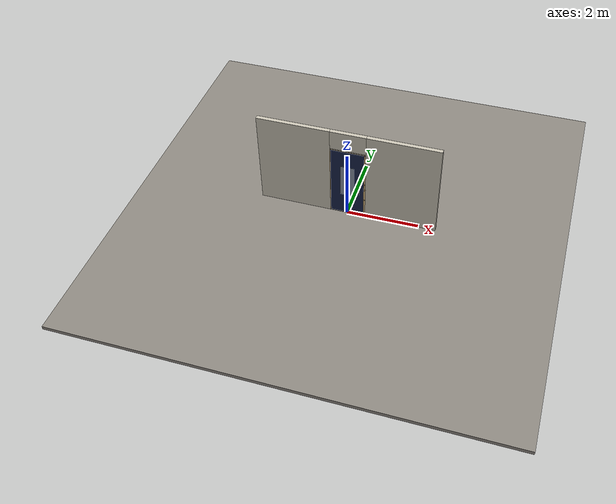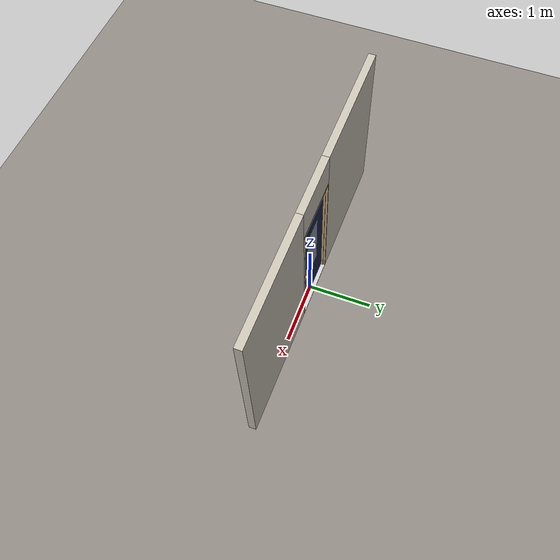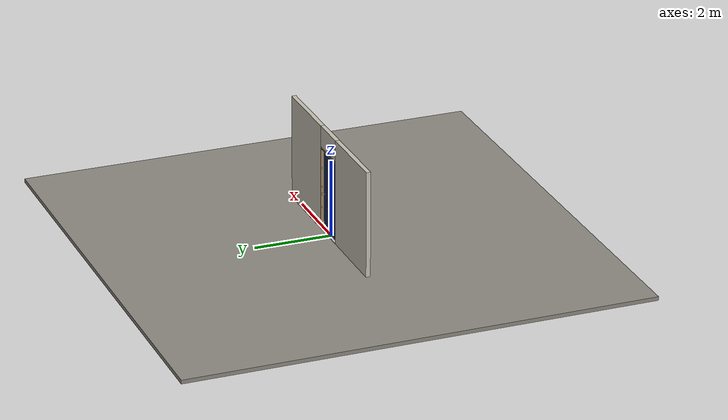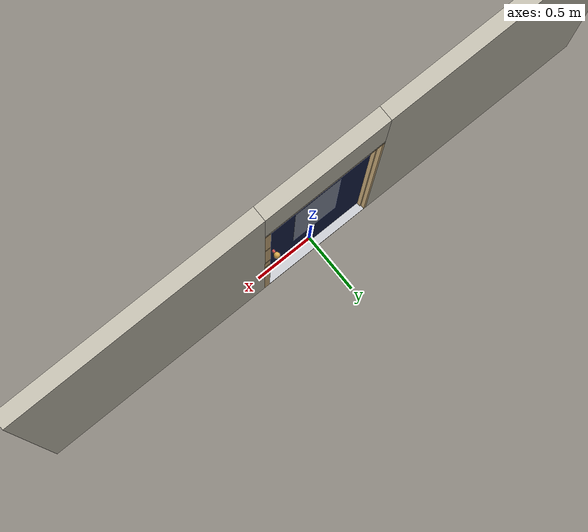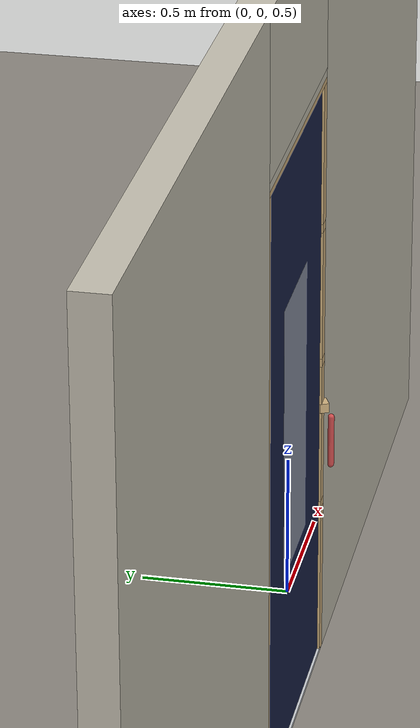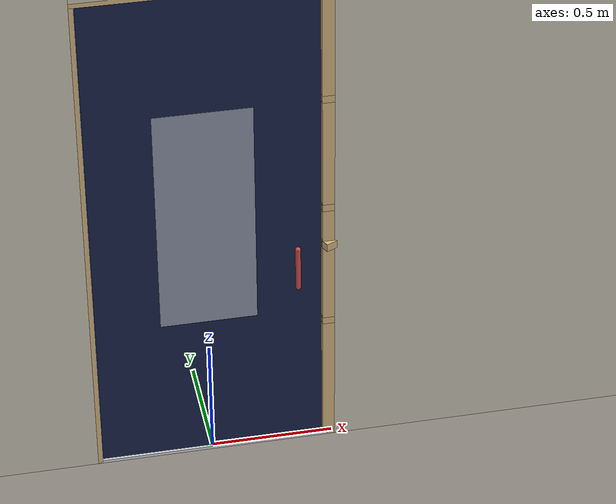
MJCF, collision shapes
<?xml version="1.0" ?>
<mujoco model="db0610_swing_single_minimal">
  <compiler angle="radian" meshdir="../../hardware" texturedir="../../textures" autolimits="true" inertiafromgeom="false"/>
  <option timestep="0.002" integrator="implicitfast" cone="elliptic" impratio="10" noslip_iterations="3">
    <flag multiccd="enable"/>
  </option>
  <size memory="16M"/>
  <default>
    <geom condim="4" solref="0.005 1" solimp="0.95 0.99 0.001"/>
    <joint solreflimit="0.005 1" solimplimit="0.95 0.99 0.001"/>
    <tendon solreflimit="0.005 1"/>
    <equality solref="0.002 1"/>
  </default>
  <visual>
    <headlight ambient="0.4 0.4 0.4" diffuse="0.7 0.7 0.7" specular="0.2 0.2 0.2"/>
    <quality shadowsize="4096"/>
    <map znear="0.01" zfar="60"/>
  </visual>
  <asset>
    <mesh name="handleset_beb5526ad2" file="handleset_beb5526ad2.obj"/>
    <mesh name="knob_d1888f6f03" file="knob_d1888f6f03.obj"/>
    <material name="mat_floor" rgba="0.55 0.53 0.5 1" specular="0.2" shininess="0.15" reflectance="0"/>
    <material name="mat_wall" rgba="0.78 0.76 0.7 1" specular="0.2" shininess="0.1" reflectance="0"/>
    <material name="mat_leaf" rgba="0.09 0.13 0.28 1" specular="0.2" shininess="0.34" reflectance="0"/>
    <material name="mat_glass" rgba="0.9 0.93 0.95 0.6" specular="0.2" shininess="0.5" reflectance="0.1"/>
    <material name="mat_hinge" rgba="0.65 0.66 0.68 1" specular="0.74" shininess="0.5" reflectance="0.36"/>
    <material name="mat_op_bronze" rgba="0.3 0.22 0.15 1" specular="0.74" shininess="0.5" reflectance="0.36"/>
    <material name="mat_op_brass" rgba="0.85 0.66 0.3 1" specular="0.8" shininess="0.75" reflectance="0.4"/>
    <material name="mat_trim" rgba="0.85 0.66 0.3 1" specular="0.8" shininess="0.75" reflectance="0.4"/>
    <material name="mat_bolt" rgba="0.85 0.66 0.3 1" specular="0.8" shininess="0.75" reflectance="0.4"/>
    <material name="mat_deadbolt" rgba="0.85 0.66 0.3 1" specular="0.8" shininess="0.75" reflectance="0.4"/>
    <material name="mat_frame" rgba="0.82 0.7 0.5 1" specular="0.2" shininess="0.45" reflectance="0"/>
    <material name="mat_threshold" rgba="0.8 0.81 0.83 1" specular="0.8" shininess="0.6" reflectance="0.4"/>
    <material name="mat_kick" rgba="0.75 0.76 0.77 1" specular="0.8" shininess="0.65" reflectance="0.4"/>
    <material name="mat_bumper_stop" rgba="0.08 0.08 0.08 1" specular="0.2" shininess="0.1" reflectance="0"/>
    <material name="mat_stop_base" rgba="0.9 0.9 0.92 1" specular="0.8" shininess="0.9" reflectance="0.4"/>
    <texture name="skybox" type="skybox" builtin="gradient" rgb1="0.6 0.7 0.85" rgb2="0.9 0.92 0.95" width="256" height="256"/>
  </asset>
  <worldbody>
    <light name="sun" pos="1.5 -2.5 4" dir="-0.3 0.5 -0.8" directional="true" diffuse="0.8 0.8 0.8" specular="0.3 0.3 0.3" castshadow="true"/>
    <light name="fill" pos="-1.5 2.5 3" dir="0.3 -0.5 -0.7" directional="true" diffuse="0.35 0.35 0.4" castshadow="false"/>
    <camera name="robot_view" pos="0 -2.609312 1.812087" xyaxes="1 0 0 0 0.26963 0.962964" fovy="52"/>
    <camera name="far_view" pos="0 2.666313 1.812087" xyaxes="-1 0 0 0 -0.26963 0.962964" fovy="52"/>
    <camera name="iso" pos="2.004737 -2.187262 2.234138" xyaxes="0.741536 0.670913 0 -0.242917 0.268487 0.932151" fovy="46"/>
    <camera name="detail_handle" pos="0.5315 -0.882 1.185" xyaxes="0.97561 0.219512 0 -0.070934 0.315262 0.94635" fovy="38"/>
    <geom name="floor" type="box" size="6 6 0.05" pos="0 0 -0.05" material="mat_floor" group="0" contype="1" conaffinity="1" friction="0.8 0.005 0.0001" density="2400"/>
    <geom name="wall_left" type="box" size="1.01025 0.0575 1.3735" pos="-1.48975 0.0285 1.3735" material="mat_wall" group="0" contype="1" conaffinity="1" friction="0.6 0.005 0.0001" density="800"/>
    <geom name="wall_right" type="box" size="0.99525 0.0575 1.3735" pos="1.50475 0.0285 1.3735" material="mat_wall" group="0" contype="1" conaffinity="1" friction="0.6 0.005 0.0001" density="800"/>
    <geom name="wall_header" type="box" size="0.4945 0.0575 0.2755" pos="0.015 0.0285 2.4715" material="mat_wall" group="0" contype="1" conaffinity="1" friction="0.6 0.005 0.0001" density="800"/>
    <geom name="jamb_hinge" type="box" size="0.0095 0.0575 1.0735" pos="-0.47 0.0285 1.0735" material="mat_frame" group="0" contype="1" conaffinity="1" friction="0.6 0.005 0.0001" density="400"/>
    <geom name="strike_590_wall_n" type="box" size="0.0245 0.03825 0.0155" pos="0.485 0.04775 0.59" material="mat_frame" group="0" contype="1" conaffinity="1" friction="0.6 0.005 0.0001" density="400"/>
    <geom name="strike_590_wall_p" type="box" size="0.0245 0.00975 0.0155" pos="0.485 -0.01925 0.59" material="mat_frame" group="0" contype="1" conaffinity="1" friction="0.6 0.005 0.0001" density="400"/>
    <geom name="strike_590_back" type="box" size="0.0125 0.0095 0.0155" pos="0.497 0 0.59" material="mat_frame" group="0" contype="1" conaffinity="1" friction="0.6 0.005 0.0001" density="400"/>
    <geom name="strike_965_wall_n" type="box" size="0.0245 0.039075 0.0167" pos="0.485 0.046925 0.965" material="mat_frame" group="0" contype="1" conaffinity="1" friction="0.6 0.005 0.0001" density="400"/>
    <geom name="strike_965_wall_p" type="box" size="0.0245 0.008 0.0167" pos="0.485 -0.01585 0.965" material="mat_frame" group="0" contype="1" conaffinity="1" friction="0.6 0.005 0.0001" density="400"/>
    <geom name="strike_965_ramp" type="box" size="0.0245 0.01649 0.0167" pos="0.489636 -0.028673 0.965" quat="0.977148 0 0 0.212558" material="mat_frame" group="0" contype="1" conaffinity="1" friction="0.12 0.005 0.0001" density="400"/>
    <geom name="strike_965_back" type="box" size="0.01615 0.00785 0.0167" pos="0.49335 0 0.965" material="mat_frame" group="0" contype="1" conaffinity="1" friction="0.6 0.005 0.0001" density="400"/>
    <geom name="strike_1140_wall_n" type="box" size="0.0245 0.03825 0.0155" pos="0.485 0.04775 1.14" material="mat_frame" group="0" contype="1" conaffinity="1" friction="0.6 0.005 0.0001" density="400"/>
    <geom name="strike_1140_wall_p" type="box" size="0.0245 0.00975 0.0155" pos="0.485 -0.01925 1.14" material="mat_frame" group="0" contype="1" conaffinity="1" friction="0.6 0.005 0.0001" density="400"/>
    <geom name="strike_1140_back" type="box" size="0.0125 0.0095 0.0155" pos="0.497 0 1.14" material="mat_frame" group="0" contype="1" conaffinity="1" friction="0.6 0.005 0.0001" density="400"/>
    <geom name="strike_1640_wall_n" type="box" size="0.0245 0.03825 0.0155" pos="0.485 0.04775 1.64" material="mat_frame" group="0" contype="1" conaffinity="1" friction="0.6 0.005 0.0001" density="400"/>
    <geom name="strike_1640_wall_p" type="box" size="0.0245 0.00975 0.0155" pos="0.485 -0.01925 1.64" material="mat_frame" group="0" contype="1" conaffinity="1" friction="0.6 0.005 0.0001" density="400"/>
    <geom name="strike_1640_back" type="box" size="0.0125 0.0095 0.0155" pos="0.497 0 1.64" material="mat_frame" group="0" contype="1" conaffinity="1" friction="0.6 0.005 0.0001" density="400"/>
    <geom name="jamb_strike_0" type="box" size="0.0245 0.0575 0.28725" pos="0.485 0.0285 0.28725" material="mat_frame" group="0" contype="1" conaffinity="1" friction="0.6 0.005 0.0001" density="400"/>
    <geom name="jamb_strike_1" type="box" size="0.0245 0.0575 0.1714" pos="0.485 0.0285 0.7769" material="mat_frame" group="0" contype="1" conaffinity="1" friction="0.6 0.005 0.0001" density="400"/>
    <geom name="jamb_strike_2" type="box" size="0.0245 0.0575 0.0714" pos="0.485 0.0285 1.0531" material="mat_frame" group="0" contype="1" conaffinity="1" friction="0.6 0.005 0.0001" density="400"/>
    <geom name="jamb_strike_3" type="box" size="0.0245 0.0575 0.2345" pos="0.485 0.0285 1.39" material="mat_frame" group="0" contype="1" conaffinity="1" friction="0.6 0.005 0.0001" density="400"/>
    <geom name="jamb_strike_4" type="box" size="0.0245 0.0575 0.24575" pos="0.485 0.0285 1.90125" material="mat_frame" group="0" contype="1" conaffinity="1" friction="0.6 0.005 0.0001" density="400"/>
    <geom name="jamb_head" type="box" size="0.4945 0.0575 0.0095" pos="0.015 0.0285 2.1565" material="mat_frame" group="0" contype="1" conaffinity="1" friction="0.6 0.005 0.0001" density="400"/>
    <geom name="head_stud" type="box" size="0.4945 0.0575 0.015" pos="0.015 0.0285 2.181" material="mat_wall" group="0" contype="1" conaffinity="1" friction="0.6 0.005 0.0001" density="500"/>
    <geom name="stop_hinge" type="box" size="0.0055 0.016 1.0735" pos="-0.455 0.0385 1.0735" material="mat_frame" group="0" contype="1" conaffinity="1" friction="0.6 0.005 0.0001" density="400"/>
    <geom name="stop_strike" type="box" size="0.0055 0.016 1.0735" pos="0.455 0.0385 1.0735" material="mat_frame" group="0" contype="1" conaffinity="1" friction="0.6 0.005 0.0001" density="400"/>
    <geom name="stop_head" type="box" size="0.4605 0.016 0.0055" pos="0 0.0385 2.1415" material="mat_frame" group="0" contype="1" conaffinity="1" friction="0.6 0.005 0.0001" density="400"/>
    <geom name="threshold" type="box" size="0.4795 0.0575 0.0065" pos="0 0.0285 0.0065" material="mat_threshold" group="0" contype="1" conaffinity="1" friction="0.5 0.005 0.0001" density="2700"/>
    <site name="approach_point" pos="0 -1.5 0" quat="1 0 0 0" size="0.05" rgba="0.2 0.9 0.2 0.5" group="4"/>
    <site name="goal_point" pos="0 1.5 0" quat="1 0 0 0" size="0.05" rgba="0.2 0.9 0.2 0.5" group="4"/>
    <site name="door_plane_center" pos="0 0 1.0735" quat="1 0 0 0" size="0.02" rgba="0.2 0.9 0.2 0.5" group="4"/>
    <body name="leaf" pos="-0.4605 0 0">
      <inertial pos="0.475345 -0.002192 1.072422" mass="32.373317" quat="-0.494951 0.500591 0.49988 0.504532" diaginertia="2.33034812 11.715175236 14.027330678"/>
      <joint name="leaf_hinge" type="hinge" axis="0 0 -1" pos="0.003 -0.029 0" limited="true" range="0 1.570796" damping="2.268966" frictionloss="1.602525" stiffness="6.6" springref="-0.409091" armature="0.02"/>
      <geom name="leaf_slab" type="box" size="0.457 0.022 1.063" pos="0.46 0 1.08" material="mat_leaf" group="0" contype="1" conaffinity="1" friction="0.4 0.005 0.0001" density="1"/>
      <geom name="leaf_glass_0" type="box" size="0.196053 0.0228 0.491106" pos="0.46 0 1.145906" material="mat_glass" group="1" contype="0" conaffinity="0" density="1"/>
      <geom name="leaf_handleset_n" type="mesh" mesh="handleset_beb5526ad2" pos="0.812 -0.022 0.905" quat="0.707107 0.707107 0 0" material="mat_op_bronze" group="1" contype="0" conaffinity="0" density="3000"/>
      <geom name="leaf_handleset_col_n" type="capsule" size="0.011 0.09" pos="0.812 -0.082 0.905" material="mat_op_bronze" group="3" contype="1" conaffinity="1" rgba="0.8 0.3 0.3 0.25" friction="0.7 0.01 0.0001" density="3000"/>
      <site name="leaf_handleset_grip_n" pos="0.812 -0.082 0.905" quat="1 0 0 0" size="0.012" rgba="0.2 0.9 0.2 0.5" group="4"/>
      <site name="leaf_edge_mid" pos="0.917 0 1.063" quat="1 0 0 0" size="0.02" rgba="0.2 0.9 0.2 0.5" group="4"/>
      <body name="leaf_handle" pos="0.847 0 0.965">
        <inertial pos="0 0.058082 0" mass="0.549341" quat="0.707107 0 0 -0.707107" diaginertia="0.000155778 0.000270874 0.000270874"/>
        <joint name="leaf_handle_hinge" type="hinge" axis="0 -1 0" limited="true" range="0 0.87" damping="0.142525" frictionloss="0.038" stiffness="0.5" springref="-0.5" armature="0.01"/>
        <geom name="leaf_handle_knob_p" type="mesh" mesh="knob_d1888f6f03" pos="0 0.022 0" quat="-0.707107 0.707107 0 0" material="mat_op_brass" group="1" contype="0" conaffinity="0" density="3000"/>
        <geom name="leaf_handle_knob_col_p" type="sphere" size="0.0243" pos="0 0.0685 0" material="mat_op_brass" group="0" contype="1" conaffinity="1" friction="0.9 0.01 0.0001" density="3000"/>
        <geom name="leaf_handle_knob_neck_p" type="cylinder" size="0.011 0.012" pos="0 0.034 0" quat="0.707107 -0.707107 0 0" material="mat_op_brass" group="3" contype="1" conaffinity="1" rgba="0.8 0.3 0.3 0.25" friction="0.6 0.005 0.0001" density="3000"/>
        <site name="leaf_handle_grip_p" pos="0 0.0685 0" quat="1 0 0 0" size="0.012" rgba="0.2 0.9 0.2 0.5" group="4"/>
      </body>
      <body name="leaf_latch_bolt" pos="0.917 0 0.965">
        <inertial pos="-0.00865 0 0" mass="0.041419" quat="0.92388 -0.382683 0 0" diaginertia="0.000000798 0.000005598 0.000005598"/>
        <joint name="leaf_latch_bolt_slide" type="slide" axis="-1 0 0" limited="true" range="0 0.0127" damping="2" frictionloss="0.3" stiffness="300" springref="-0.008333" armature="0.1"/>
        <geom name="leaf_latch_bolt_capsule" type="capsule" size="0.00635 0.015" pos="-0.00865 0 0" quat="0.707107 0 0.707107 0" material="mat_bolt" group="0" contype="1" conaffinity="1" friction="0.2 0.005 0.0001" density="8500"/>
      </body>
    </body>
  </worldbody>
  <tendon>
    <fixed name="leaf_latch_bolt_coupling" limited="true" range="0 10">
      <joint joint="leaf_latch_bolt_slide" coef="1"/>
      <joint joint="leaf_handle_hinge" coef="-0.015679"/>
    </fixed>
  </tendon>
  <sensor>
    <jointpos name="leaf_hinge_pos" joint="leaf_hinge"/>
    <jointvel name="leaf_hinge_vel" joint="leaf_hinge"/>
    <jointpos name="leaf_handle_hinge_pos" joint="leaf_handle_hinge"/>
    <jointvel name="leaf_handle_hinge_vel" joint="leaf_handle_hinge"/>
    <jointpos name="leaf_latch_bolt_slide_pos" joint="leaf_latch_bolt_slide"/>
    <jointvel name="leaf_latch_bolt_slide_vel" joint="leaf_latch_bolt_slide"/>
  </sensor>
</mujoco>
